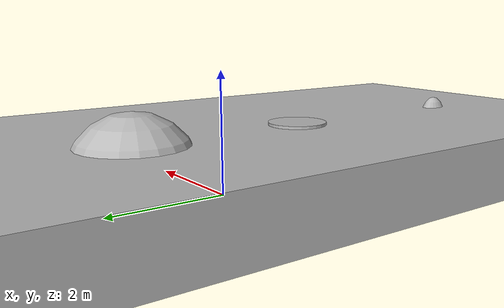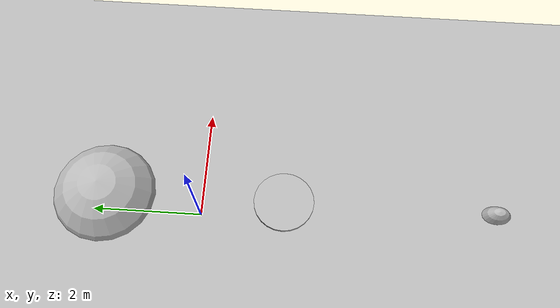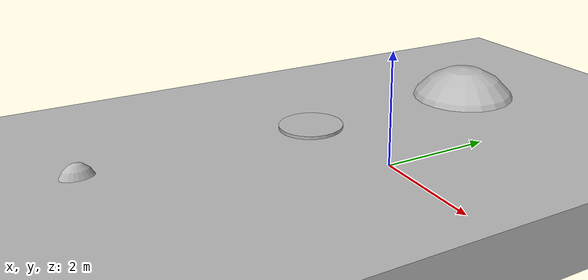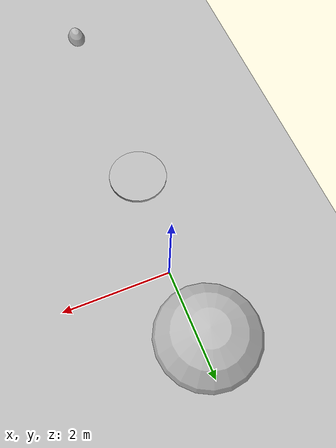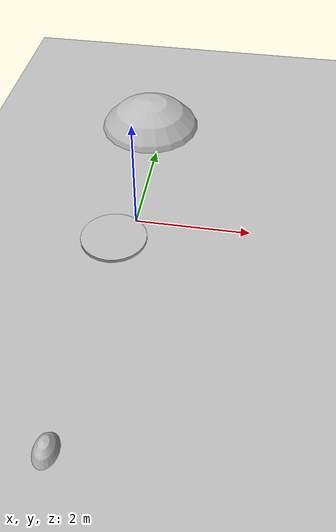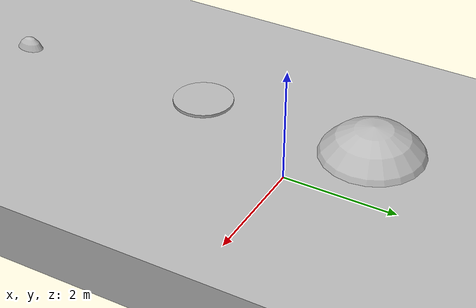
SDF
<?xml version="1.0" ?>
<sdf version="1.6">
  <world name="default">
    <physics type="dart">
      <max_step_size>0.001</max_step_size>
      <real_time_factor>0</real_time_factor>
      <dart>
        <collision_detector>bullet</collision_detector>
      </dart>
      <simbody>
        <collision_detector>bullet</collision_detector>
      </simbody>
    </physics>
    <model name="sphere">
      <pose>0 1.5 0.5 0 0 0</pose>
      <link name="sphere_link">
        <inertial>
          <inertia>
            <ixx>3</ixx>
            <ixy>0</ixy>
            <ixz>0</ixz>
            <iyy>3</iyy>
            <iyz>0</iyz>
            <izz>3</izz>
          </inertia>
          <mass>1.0</mass>
        </inertial>
        <collision name="sphere_collision">
          <geometry>
            <sphere>
              <radius>1</radius>
            </sphere>
          </geometry>
        </collision>
        <visual name="sphere_visual">
          <geometry>
            <sphere>
              <radius>1</radius>
            </sphere>
          </geometry>
        </visual>
      </link>
    </model>

    <model name="box">
      <static>true</static>
      <pose>0 0 0.5 0 0 0</pose>
      <link name="box_link">
        <inertial>
          <inertia>
            <ixx>1</ixx>
            <ixy>0</ixy>
            <ixz>0</ixz>
            <iyy>1</iyy>
            <iyz>0</iyz>
            <izz>1</izz>
          </inertia>
          <mass>1.0</mass>
        </inertial>
        <collision name="box_collision">
          <geometry>
            <box>
              <size>100 100 1</size>
            </box>
          </geometry>
        </collision>
        <visual name="box_visual">
          <geometry>
            <box>
              <size>100 100 1</size>
            </box>
          </geometry>
        </visual>
      </link>
    </model>

    <model name="cylinder">
      <pose>0 -1.5 0.5 0 0 0</pose>
      <link name="cylinder_link">
        <inertial>
          <inertia>
            <ixx>2</ixx>
            <ixy>0</ixy>
            <ixz>0</ixz>
            <iyy>2</iyy>
            <iyz>0</iyz>
            <izz>2</izz>
          </inertia>
          <mass>2.0</mass>
        </inertial>
        <collision name="cylinder_collision">
          <geometry>
            <cylinder>
              <radius>0.5</radius>
              <length>1.1</length>
            </cylinder>
          </geometry>
        </collision>
        <visual name="cylinder_visual">
          <geometry>
            <cylinder>
              <radius>0.5</radius>
              <length>1.1</length>
            </cylinder>
          </geometry>
        </visual>
      </link>
    </model>

    <model name="capsule">
      <pose>0 -3.0 0.5 0 0 0</pose>
      <link name="capsule_link">
        <inertial>
          <inertia>
            <ixx>0.074154</ixx>
            <ixy>0</ixy>
            <ixz>0</ixz>
            <iyy>0.074154</iyy>
            <iyz>0</iyz>
            <izz>0.018769</izz>
          </inertia>
          <mass>1.0</mass>
        </inertial>
        <collision name="capsule_collision">
          <geometry>
            <capsule>
              <radius>0.2</radius>
              <length>0.6</length>
            </capsule>
          </geometry>
        </collision>
        <visual name="capsule_visual">
          <geometry>
            <capsule>
              <radius>0.2</radius>
              <length>0.6</length>
            </capsule>
          </geometry>
          <material>
            <ambient>1 1 0 1</ambient>
            <diffuse>1 1 0 1</diffuse>
            <specular>1 1 0 1</specular>
          </material>
        </visual>
      </link>
    </model>

    <model name="ellipsoid">
      <pose>0 -5 0.7 0 0 0</pose>
      <link name="ellipsoid_link">
        <inertial>
          <inertia>
            <ixx>0.068</ixx>
            <ixy>0</ixy>
            <ixz>0</ixz>
            <iyy>0.058</iyy>
            <iyz>0</iyz>
            <izz>0.026</izz>
          </inertia>
          <mass>1.0</mass>
        </inertial>
        <collision name="ellipsoid_collision">
          <geometry>
            <ellipsoid>
              <radii>0.2 0.3 0.5</radii>
            </ellipsoid>
          </geometry>
        </collision>
        <visual name="ellipsoid_visual">
          <geometry>
            <ellipsoid>
              <radii>0.2 0.3 0.5</radii>
            </ellipsoid>
          </geometry>
        </visual>
      </link>
    </model>
  </world>
</sdf>
